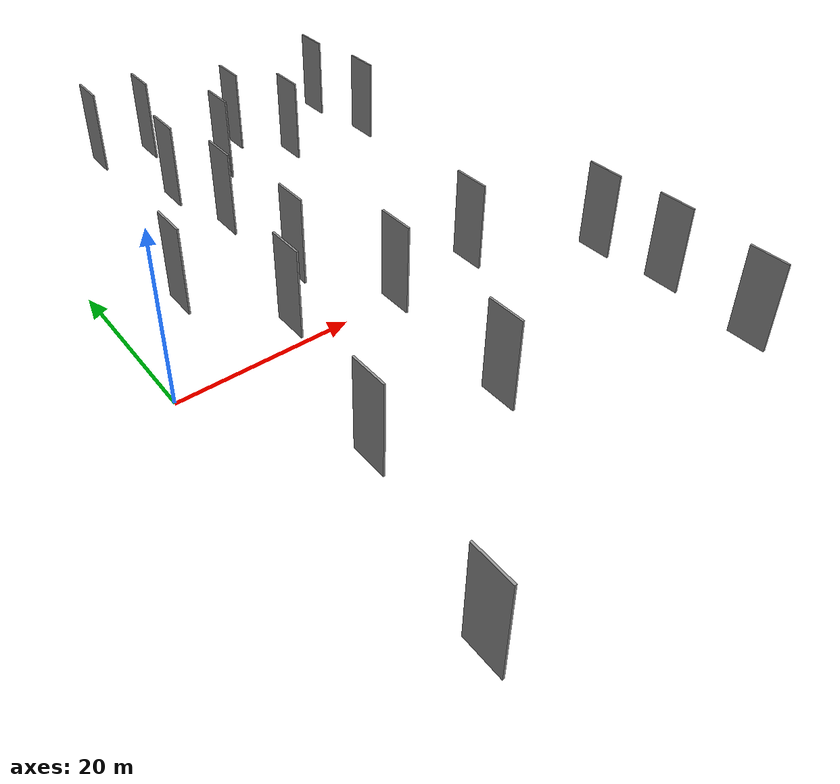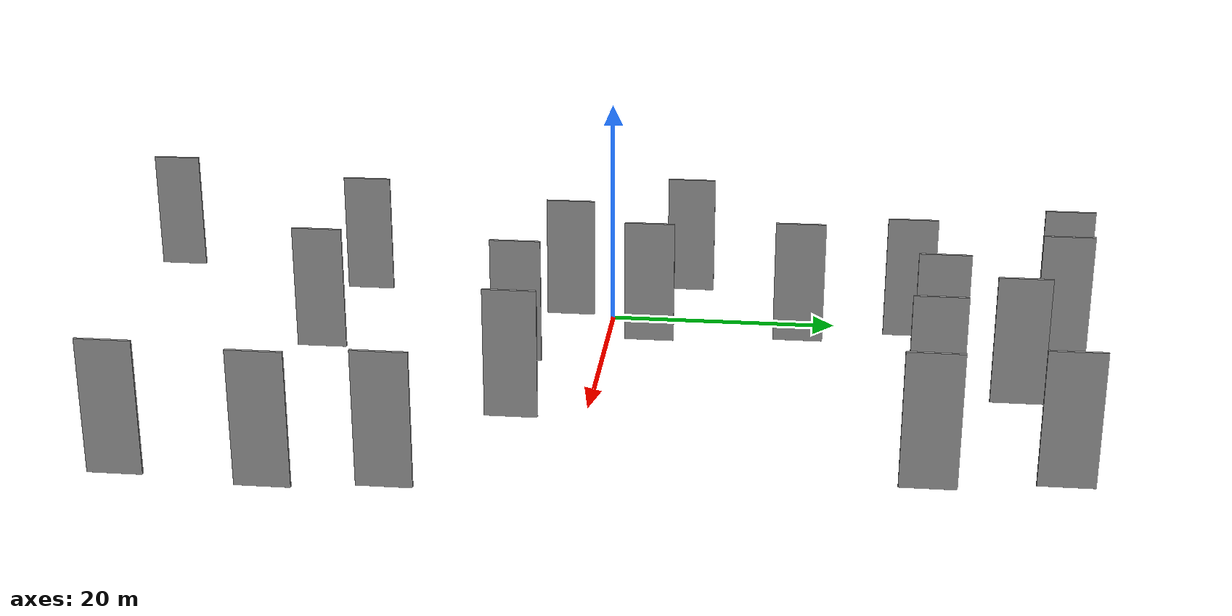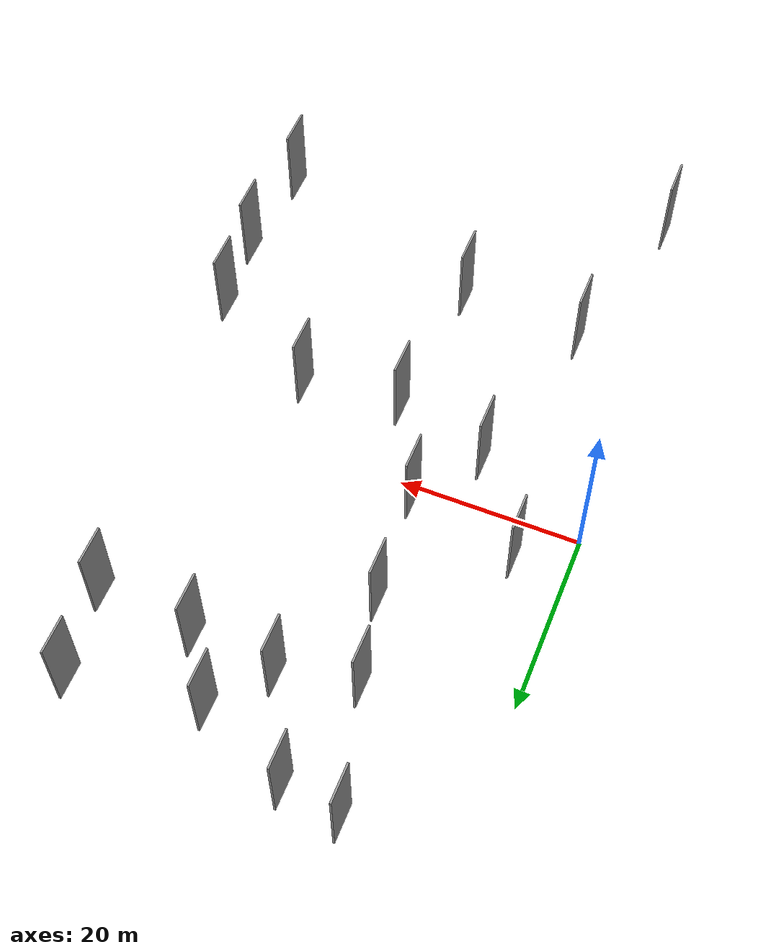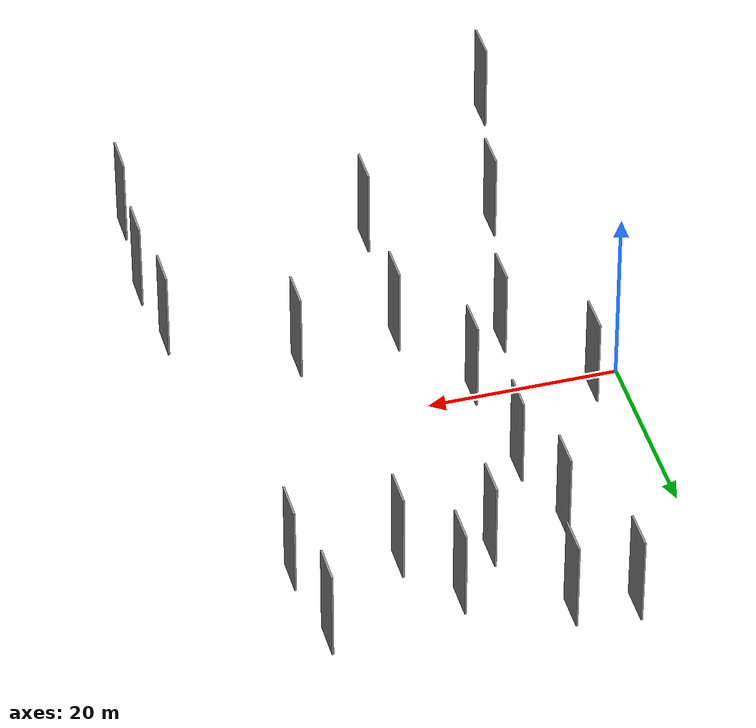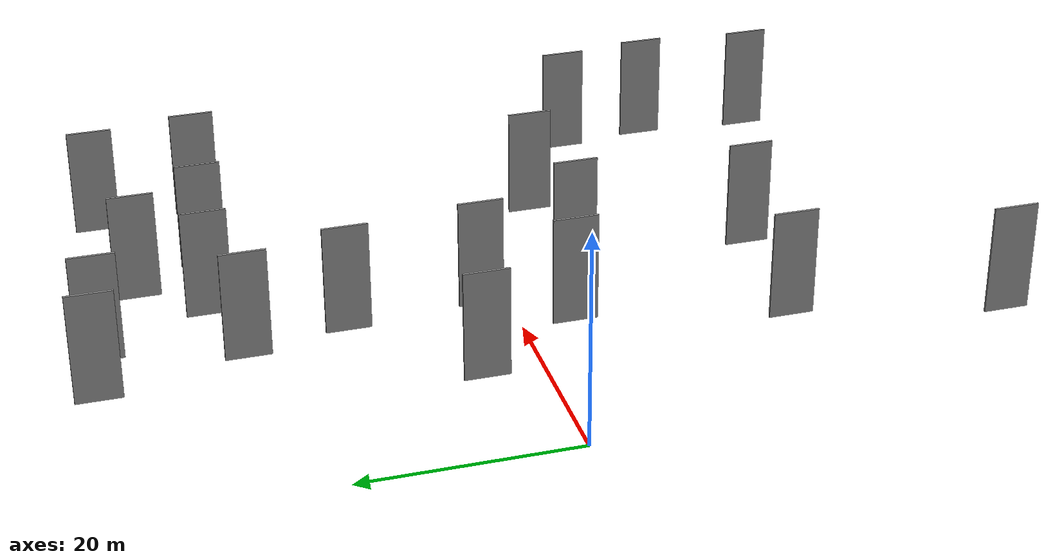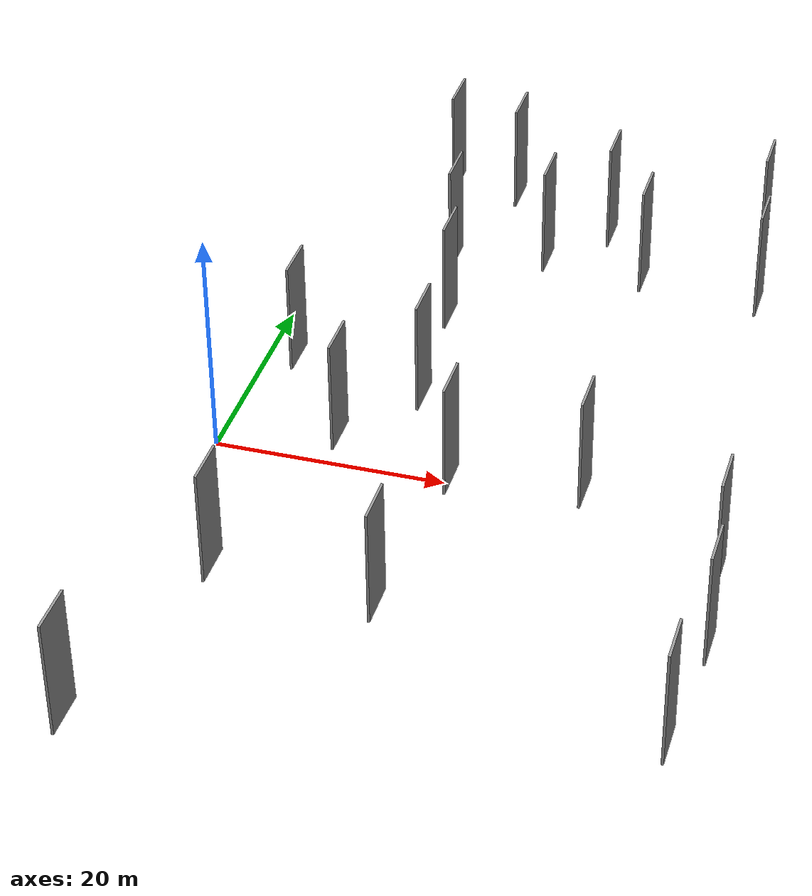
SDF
<sdf version="1.6">
 <world name="default">
  <scene>
   <sky><clouds><speed>12</speed></clouds></sky>
   <ambient>0.4 0.4 0.4 1</ambient>
   <background>0.7 0.7 0.7 1</background>
   <shadows>1</shadows>
  </scene>
  <gravity>0 0 -9.8066</gravity>
  <magnetic_field>6e-06 2.3e-05 -4.2e-05</magnetic_field>
  <physics default="0" name="default_physics" type="ode">
   <ode>
    <solver>
     <type>quick</type>
     <iters>10</iters>
     <sor>1.0</sor>
     <use_dynamic_moi_rescaling>0</use_dynamic_moi_rescaling>
    </solver>
    <constraints>
     <cfm>0</cfm>
     <erp>0.2</erp>
     <contact_max_correcting_vel>100</contact_max_correcting_vel>
     <contact_surface_layer>0.001</contact_surface_layer>
    </constraints>
   </ode>
   <max_step_size>0.004</max_step_size>
   <real_time_factor>1</real_time_factor>
   <real_time_update_rate>250</real_time_update_rate>
  </physics>
  <light name="sun" type="directional">
   <pose>0 0 10 0 0 0</pose>
   <diffuse>0.8 0.8 0.8 1</diffuse>
   <specular>0.2 0.2 0.2 1</specular>
   <attenuation>
    <range>1000</range>
    <constant>0.9</constant>
    <linear>0.01</linear>
    <quadratic>0.001</quadratic>
   </attenuation>
   <direction>-0.5 0.1 -0.9</direction>
  </light>
  <model name="grey_wall_1">
   <static>1</static>
   <pose>10.3924 38.5099 5.0 0.000000 0.000000 1.570796</pose>
   <link name="link">
    <pose>0 0 5.00 0 0 0</pose>
    <collision name="collision"><geometry><box><size>4.00 0.2 10.00</size></box></geometry></collision>
    <visual name="visual">
     <cast_shadows>0</cast_shadows>
     <geometry><box><size>4.00 0.2 10.00</size></box></geometry>
     <material>
      <script>
       <uri>model://grey_wall/materials/scripts</uri>
       <uri>model://grey_wall/materials/textures</uri>
       <name>vrc/grey_wall</name>
      </script>
     </material>
    </visual>
   </link>
  </model>
  <model name="grey_wall_2">
   <static>1</static>
   <pose>26.3707 33.2354 5.0 0.000000 0.000000 1.570796</pose>
   <link name="link">
    <pose>0 0 5.00 0 0 0</pose>
    <collision name="collision"><geometry><box><size>4.00 0.2 10.00</size></box></geometry></collision>
    <visual name="visual">
     <cast_shadows>0</cast_shadows>
     <geometry><box><size>4.00 0.2 10.00</size></box></geometry>
     <material>
      <script>
       <uri>model://grey_wall/materials/scripts</uri>
       <uri>model://grey_wall/materials/textures</uri>
       <name>vrc/grey_wall</name>
      </script>
     </material>
    </visual>
   </link>
  </model>
  <model name="grey_wall_3">
   <static>1</static>
   <pose>44.8564 -30.2030 5.0 0.000000 0.000000 1.570796</pose>
   <link name="link">
    <pose>0 0 5.00 0 0 0</pose>
    <collision name="collision"><geometry><box><size>4.00 0.2 10.00</size></box></geometry></collision>
    <visual name="visual">
     <cast_shadows>0</cast_shadows>
     <geometry><box><size>4.00 0.2 10.00</size></box></geometry>
     <material>
      <script>
       <uri>model://grey_wall/materials/scripts</uri>
       <uri>model://grey_wall/materials/textures</uri>
       <name>vrc/grey_wall</name>
      </script>
     </material>
    </visual>
   </link>
  </model>
  <model name="grey_wall_4">
   <static>1</static>
   <pose>3.2372 -38.8629 5.0 0.000000 0.000000 1.570796</pose>
   <link name="link">
    <pose>0 0 5.00 0 0 0</pose>
    <collision name="collision"><geometry><box><size>4.00 0.2 10.00</size></box></geometry></collision>
    <visual name="visual">
     <cast_shadows>0</cast_shadows>
     <geometry><box><size>4.00 0.2 10.00</size></box></geometry>
     <material>
      <script>
       <uri>model://grey_wall/materials/scripts</uri>
       <uri>model://grey_wall/materials/textures</uri>
       <name>vrc/grey_wall</name>
      </script>
     </material>
    </visual>
   </link>
  </model>
  <model name="grey_wall_5">
   <static>1</static>
   <pose>44.8452 -11.1819 5.0 0.000000 0.000000 1.570796</pose>
   <link name="link">
    <pose>0 0 5.00 0 0 0</pose>
    <collision name="collision"><geometry><box><size>4.00 0.2 10.00</size></box></geometry></collision>
    <visual name="visual">
     <cast_shadows>0</cast_shadows>
     <geometry><box><size>4.00 0.2 10.00</size></box></geometry>
     <material>
      <script>
       <uri>model://grey_wall/materials/scripts</uri>
       <uri>model://grey_wall/materials/textures</uri>
       <name>vrc/grey_wall</name>
      </script>
     </material>
    </visual>
   </link>
  </model>
  <model name="grey_wall_6">
   <static>1</static>
   <pose>22.1076 -5.4832 5.0 0.000000 0.000000 1.570796</pose>
   <link name="link">
    <pose>0 0 5.00 0 0 0</pose>
    <collision name="collision"><geometry><box><size>4.00 0.2 10.00</size></box></geometry></collision>
    <visual name="visual">
     <cast_shadows>0</cast_shadows>
     <geometry><box><size>4.00 0.2 10.00</size></box></geometry>
     <material>
      <script>
       <uri>model://grey_wall/materials/scripts</uri>
       <uri>model://grey_wall/materials/textures</uri>
       <name>vrc/grey_wall</name>
      </script>
     </material>
    </visual>
   </link>
  </model>
  <model name="grey_wall_7">
   <static>1</static>
   <pose>11.8245 -2.3541 5.0 0.000000 0.000000 1.570796</pose>
   <link name="link">
    <pose>0 0 5.00 0 0 0</pose>
    <collision name="collision"><geometry><box><size>4.00 0.2 10.00</size></box></geometry></collision>
    <visual name="visual">
     <cast_shadows>0</cast_shadows>
     <geometry><box><size>4.00 0.2 10.00</size></box></geometry>
     <material>
      <script>
       <uri>model://grey_wall/materials/scripts</uri>
       <uri>model://grey_wall/materials/textures</uri>
       <name>vrc/grey_wall</name>
      </script>
     </material>
    </visual>
   </link>
  </model>
  <model name="grey_wall_8">
   <static>1</static>
   <pose>32.7218 -4.2951 5.0 0.000000 0.000000 1.570796</pose>
   <link name="link">
    <pose>0 0 5.00 0 0 0</pose>
    <collision name="collision"><geometry><box><size>4.00 0.2 10.00</size></box></geometry></collision>
    <visual name="visual">
     <cast_shadows>0</cast_shadows>
     <geometry><box><size>4.00 0.2 10.00</size></box></geometry>
     <material>
      <script>
       <uri>model://grey_wall/materials/scripts</uri>
       <uri>model://grey_wall/materials/textures</uri>
       <name>vrc/grey_wall</name>
      </script>
     </material>
    </visual>
   </link>
  </model>
  <model name="grey_wall_9">
   <static>1</static>
   <pose>20.9511 -21.5772 5.0 0.000000 0.000000 1.570796</pose>
   <link name="link">
    <pose>0 0 5.00 0 0 0</pose>
    <collision name="collision"><geometry><box><size>4.00 0.2 10.00</size></box></geometry></collision>
    <visual name="visual">
     <cast_shadows>0</cast_shadows>
     <geometry><box><size>4.00 0.2 10.00</size></box></geometry>
     <material>
      <script>
       <uri>model://grey_wall/materials/scripts</uri>
       <uri>model://grey_wall/materials/textures</uri>
       <name>vrc/grey_wall</name>
      </script>
     </material>
    </visual>
   </link>
  </model>
  <model name="grey_wall_10">
   <static>1</static>
   <pose>39.9970 35.2018 5.0 0.000000 0.000000 1.570796</pose>
   <link name="link">
    <pose>0 0 5.00 0 0 0</pose>
    <collision name="collision"><geometry><box><size>4.00 0.2 10.00</size></box></geometry></collision>
    <visual name="visual">
     <cast_shadows>0</cast_shadows>
     <geometry><box><size>4.00 0.2 10.00</size></box></geometry>
     <material>
      <script>
       <uri>model://grey_wall/materials/scripts</uri>
       <uri>model://grey_wall/materials/textures</uri>
       <name>vrc/grey_wall</name>
      </script>
     </material>
    </visual>
   </link>
  </model>
  <model name="grey_wall_11">
   <static>1</static>
   <pose>16.6034 37.6472 5.0 0.000000 0.000000 1.570796</pose>
   <link name="link">
    <pose>0 0 5.00 0 0 0</pose>
    <collision name="collision"><geometry><box><size>4.00 0.2 10.00</size></box></geometry></collision>
    <visual name="visual">
     <cast_shadows>0</cast_shadows>
     <geometry><box><size>4.00 0.2 10.00</size></box></geometry>
     <material>
      <script>
       <uri>model://grey_wall/materials/scripts</uri>
       <uri>model://grey_wall/materials/textures</uri>
       <name>vrc/grey_wall</name>
      </script>
     </material>
    </visual>
   </link>
  </model>
  <model name="grey_wall_12">
   <static>1</static>
   <pose>41.1932 25.7647 5.0 0.000000 0.000000 1.570796</pose>
   <link name="link">
    <pose>0 0 5.00 0 0 0</pose>
    <collision name="collision"><geometry><box><size>4.00 0.2 10.00</size></box></geometry></collision>
    <visual name="visual">
     <cast_shadows>0</cast_shadows>
     <geometry><box><size>4.00 0.2 10.00</size></box></geometry>
     <material>
      <script>
       <uri>model://grey_wall/materials/scripts</uri>
       <uri>model://grey_wall/materials/textures</uri>
       <name>vrc/grey_wall</name>
      </script>
     </material>
    </visual>
   </link>
  </model>
  <model name="grey_wall_13">
   <static>1</static>
   <pose>30.7187 26.7996 5.0 0.000000 0.000000 1.570796</pose>
   <link name="link">
    <pose>0 0 5.00 0 0 0</pose>
    <collision name="collision"><geometry><box><size>4.00 0.2 10.00</size></box></geometry></collision>
    <visual name="visual">
     <cast_shadows>0</cast_shadows>
     <geometry><box><size>4.00 0.2 10.00</size></box></geometry>
     <material>
      <script>
       <uri>model://grey_wall/materials/scripts</uri>
       <uri>model://grey_wall/materials/textures</uri>
       <name>vrc/grey_wall</name>
      </script>
     </material>
    </visual>
   </link>
  </model>
  <model name="grey_wall_14">
   <static>1</static>
   <pose>5.0376 7.3091 5.0 0.000000 0.000000 1.570796</pose>
   <link name="link">
    <pose>0 0 5.00 0 0 0</pose>
    <collision name="collision"><geometry><box><size>4.00 0.2 10.00</size></box></geometry></collision>
    <visual name="visual">
     <cast_shadows>0</cast_shadows>
     <geometry><box><size>4.00 0.2 10.00</size></box></geometry>
     <material>
      <script>
       <uri>model://grey_wall/materials/scripts</uri>
       <uri>model://grey_wall/materials/textures</uri>
       <name>vrc/grey_wall</name>
      </script>
     </material>
    </visual>
   </link>
  </model>
  <model name="grey_wall_15">
   <static>1</static>
   <pose>45.6737 -19.4851 5.0 0.000000 0.000000 1.570796</pose>
   <link name="link">
    <pose>0 0 5.00 0 0 0</pose>
    <collision name="collision"><geometry><box><size>4.00 0.2 10.00</size></box></geometry></collision>
    <visual name="visual">
     <cast_shadows>0</cast_shadows>
     <geometry><box><size>4.00 0.2 10.00</size></box></geometry>
     <material>
      <script>
       <uri>model://grey_wall/materials/scripts</uri>
       <uri>model://grey_wall/materials/textures</uri>
       <name>vrc/grey_wall</name>
      </script>
     </material>
    </visual>
   </link>
  </model>
  <model name="grey_wall_16">
   <static>1</static>
   <pose>7.5658 -20.5745 5.0 0.000000 0.000000 1.570796</pose>
   <link name="link">
    <pose>0 0 5.00 0 0 0</pose>
    <collision name="collision"><geometry><box><size>4.00 0.2 10.00</size></box></geometry></collision>
    <visual name="visual">
     <cast_shadows>0</cast_shadows>
     <geometry><box><size>4.00 0.2 10.00</size></box></geometry>
     <material>
      <script>
       <uri>model://grey_wall/materials/scripts</uri>
       <uri>model://grey_wall/materials/textures</uri>
       <name>vrc/grey_wall</name>
      </script>
     </material>
    </visual>
   </link>
  </model>
  <model name="grey_wall_17">
   <static>1</static>
   <pose>16.8823 4.6486 5.0 0.000000 0.000000 1.570796</pose>
   <link name="link">
    <pose>0 0 5.00 0 0 0</pose>
    <collision name="collision"><geometry><box><size>4.00 0.2 10.00</size></box></geometry></collision>
    <visual name="visual">
     <cast_shadows>0</cast_shadows>
     <geometry><box><size>4.00 0.2 10.00</size></box></geometry>
     <material>
      <script>
       <uri>model://grey_wall/materials/scripts</uri>
       <uri>model://grey_wall/materials/textures</uri>
       <name>vrc/grey_wall</name>
      </script>
     </material>
    </visual>
   </link>
  </model>
  <model name="grey_wall_18">
   <static>1</static>
   <pose>15.7420 16.6943 5.0 0.000000 0.000000 1.570796</pose>
   <link name="link">
    <pose>0 0 5.00 0 0 0</pose>
    <collision name="collision"><geometry><box><size>4.00 0.2 10.00</size></box></geometry></collision>
    <visual name="visual">
     <cast_shadows>0</cast_shadows>
     <geometry><box><size>4.00 0.2 10.00</size></box></geometry>
     <material>
      <script>
       <uri>model://grey_wall/materials/scripts</uri>
       <uri>model://grey_wall/materials/textures</uri>
       <name>vrc/grey_wall</name>
      </script>
     </material>
    </visual>
   </link>
  </model>
  <model name="grey_wall_19">
   <static>1</static>
   <pose>21.7403 27.6944 5.0 0.000000 0.000000 1.570796</pose>
   <link name="link">
    <pose>0 0 5.00 0 0 0</pose>
    <collision name="collision"><geometry><box><size>4.00 0.2 10.00</size></box></geometry></collision>
    <visual name="visual">
     <cast_shadows>0</cast_shadows>
     <geometry><box><size>4.00 0.2 10.00</size></box></geometry>
     <material>
      <script>
       <uri>model://grey_wall/materials/scripts</uri>
       <uri>model://grey_wall/materials/textures</uri>
       <name>vrc/grey_wall</name>
      </script>
     </material>
    </visual>
   </link>
  </model>
  <model name="grey_wall_20">
   <static>1</static>
   <pose>13.7105 25.6839 5.0 0.000000 0.000000 1.570796</pose>
   <link name="link">
    <pose>0 0 5.00 0 0 0</pose>
    <collision name="collision"><geometry><box><size>4.00 0.2 10.00</size></box></geometry></collision>
    <visual name="visual">
     <cast_shadows>0</cast_shadows>
     <geometry><box><size>4.00 0.2 10.00</size></box></geometry>
     <material>
      <script>
       <uri>model://grey_wall/materials/scripts</uri>
       <uri>model://grey_wall/materials/textures</uri>
       <name>vrc/grey_wall</name>
      </script>
     </material>
    </visual>
   </link>
  </model>
 </world>
</sdf>
